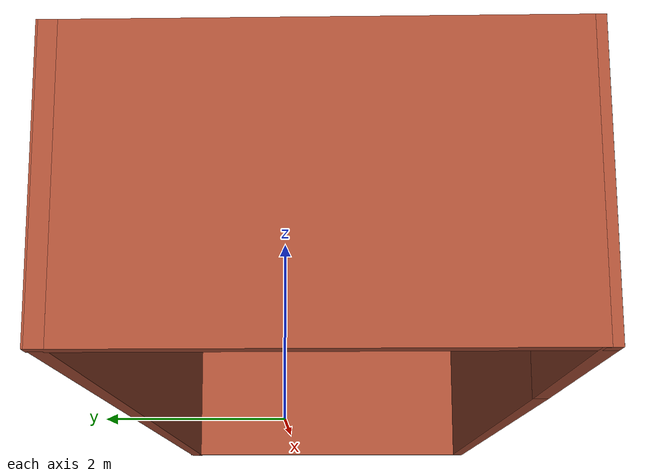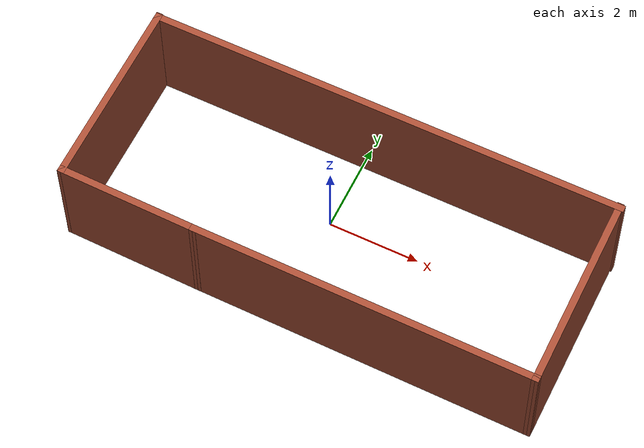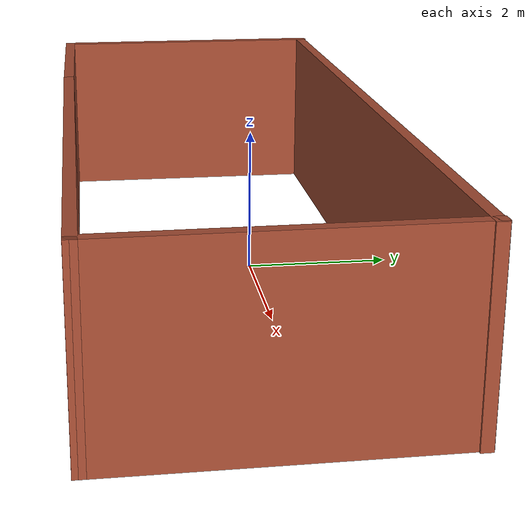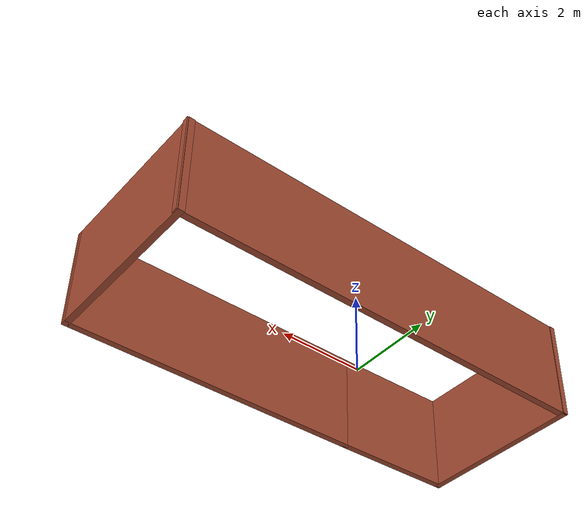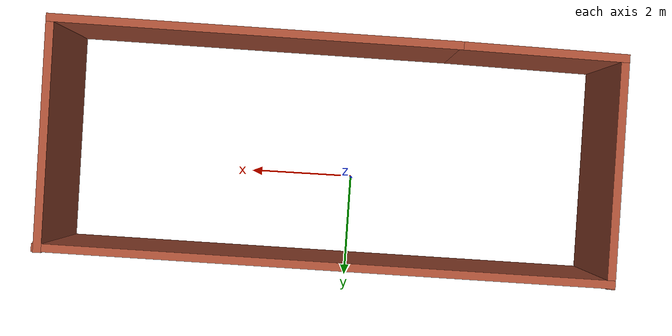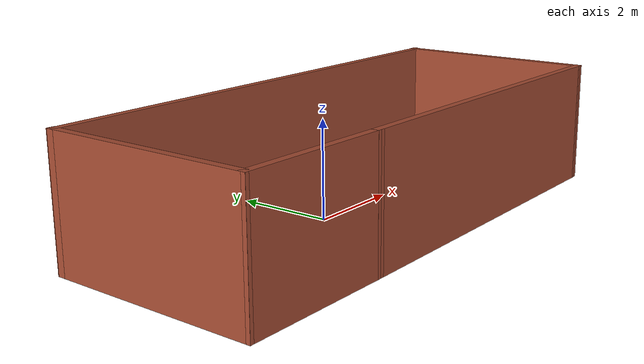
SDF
<?xml version='1.0'?>
<sdf version='1.7'>
  <model name='World1'>
    <pose>0.433759 -0.460396 0 0 -0 0</pose>
    <link name='Wall_0'>
      <collision name='Wall_0_Collision'>
        <geometry>
          <box>
            <size>7.55219 0.15 2.5</size>
          </box>
        </geometry>
        <pose>0 0 1.25 0 -0 0</pose>
      </collision>
      <visual name='Wall_0_Visual'>
        <pose>0 0 1.25 0 -0 0</pose>
        <geometry>
          <box>
            <size>7.55219 0.15 2.5</size>
          </box>
        </geometry>
        <material>
          <script>
            <uri>file://media/materials/scripts/gazebo.material</uri>
            <name>Gazebo/Bricks</name>
          </script>
          <ambient>1 1 1 1</ambient>
        </material>
        <meta>
          <layer>0</layer>
        </meta>
      </visual>
      <pose>1.49824 -2.0706 0 0 -0 -0.004053</pose>
    </link>
    <link name='Wall_12'>
      <collision name='Wall_12_Collision'>
        <geometry>
          <box>
            <size>3.1464 0.15 2.5</size>
          </box>
        </geometry>
        <pose>0 0 1.25 0 -0 0</pose>
      </collision>
      <visual name='Wall_12_Visual'>
        <pose>0 0 1.25 0 -0 0</pose>
        <geometry>
          <box>
            <size>3.1464 0.15 2.5</size>
          </box>
        </geometry>
        <material>
          <script>
            <uri>file://media/materials/scripts/gazebo.material</uri>
            <name>Gazebo/Bricks</name>
          </script>
          <ambient>1 1 1 1</ambient>
        </material>
        <meta>
          <layer>0</layer>
        </meta>
      </visual>
      <pose>-3.70069 -2.035 0 0 -0 -0.013754</pose>
    </link>
    <link name='Wall_4'>
      <collision name='Wall_4_Collision'>
        <geometry>
          <box>
            <size>4.32132 0.15 2.5</size>
          </box>
        </geometry>
        <pose>0 0 1.25 0 -0 0</pose>
      </collision>
      <visual name='Wall_4_Visual'>
        <pose>0 0 1.25 0 -0 0</pose>
        <geometry>
          <box>
            <size>4.32132 0.15 2.5</size>
          </box>
        </geometry>
        <material>
          <script>
            <uri>file://media/materials/scripts/gazebo.material</uri>
            <name>Gazebo/Bricks</name>
          </script>
          <ambient>1 1 1 1</ambient>
        </material>
        <meta>
          <layer>0</layer>
        </meta>
      </visual>
      <pose>5.18425 -0 0 0 -0 1.57798</pose>
    </link>
    <link name='Wall_5'>
      <collision name='Wall_5_Collision'>
        <geometry>
          <box>
            <size>10.5484 0.15 2.5</size>
          </box>
        </geometry>
        <pose>0 0 1.25 0 -0 0</pose>
      </collision>
      <visual name='Wall_5_Visual'>
        <pose>0 0 1.25 0 -0 0</pose>
        <geometry>
          <box>
            <size>10.5484 0.15 2.5</size>
          </box>
        </geometry>
        <material>
          <script>
            <uri>file://media/materials/scripts/gazebo.material</uri>
            <name>Gazebo/Bricks</name>
          </script>
          <ambient>1 1 1 1</ambient>
        </material>
        <meta>
          <layer>0</layer>
        </meta>
      </visual>
      <pose>0.000526 2.0704 0 0 -0 3.14159</pose>
    </link>
    <link name='Wall_6'>
      <collision name='Wall_6_Collision'>
        <geometry>
          <box>
            <size>4.25 0.15 2.5</size>
          </box>
        </geometry>
        <pose>0 0 1.25 0 -0 0</pose>
      </collision>
      <visual name='Wall_6_Visual'>
        <pose>0 0 1.25 0 -0 0</pose>
        <geometry>
          <box>
            <size>4.25 0.15 2.5</size>
          </box>
        </geometry>
        <material>
          <script>
            <uri>file://media/materials/scripts/gazebo.material</uri>
            <name>Gazebo/Bricks</name>
          </script>
          <ambient>1 1 1 1</ambient>
        </material>
        <meta>
          <layer>0</layer>
        </meta>
      </visual>
      <pose>-5.19863 0.035604 0 0 -0 -1.5708</pose>
    </link>
    <static>1</static>
  </model>
</sdf>
